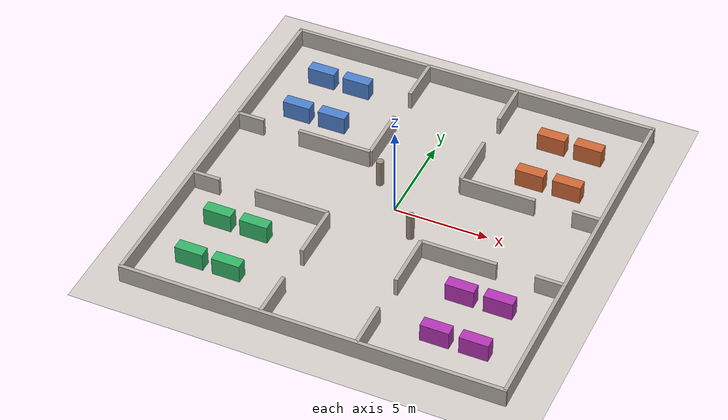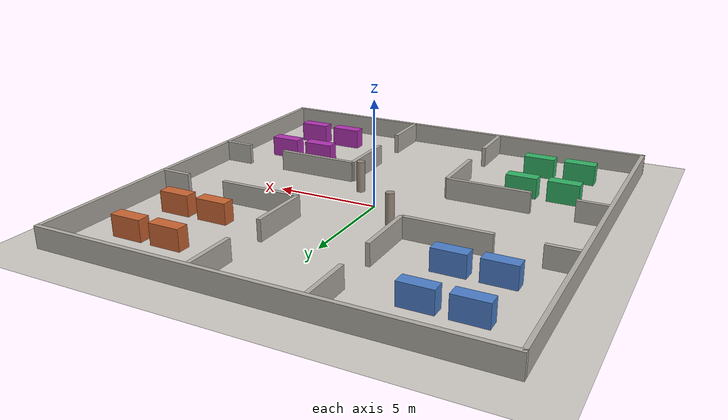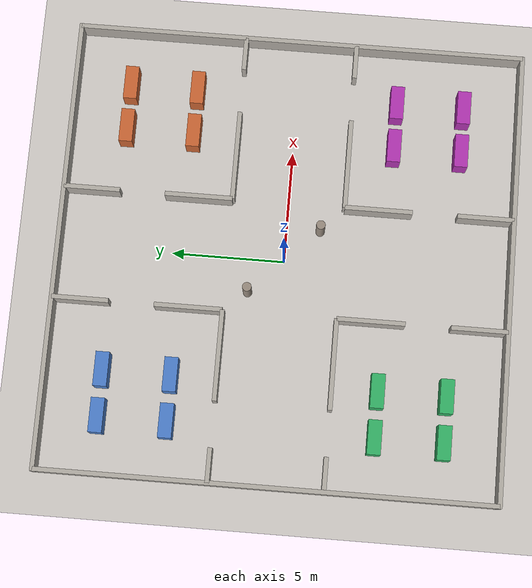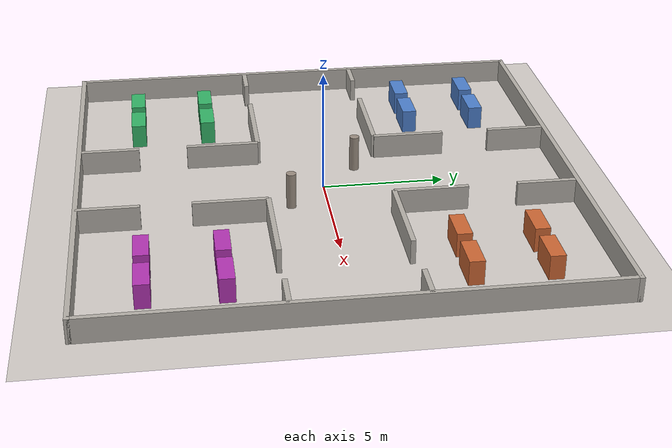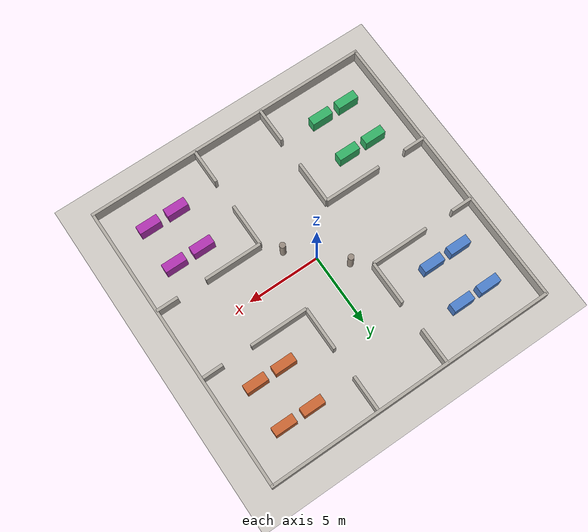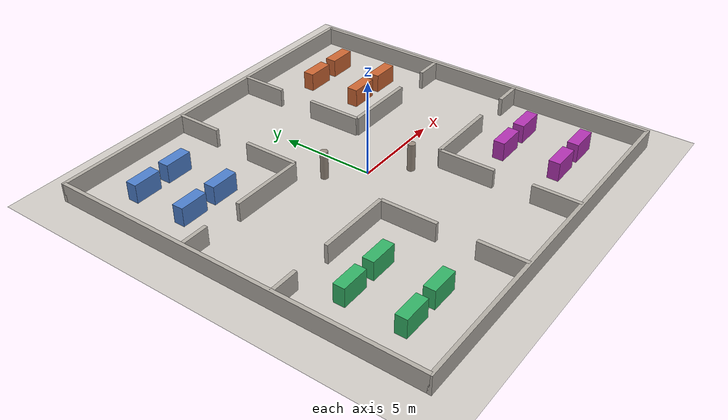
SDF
<?xml version="1.0" ?>
<sdf version="1.6">
  <world name="default">
    <physics name="1ms" type="ignored">
      <max_step_size>0.001</max_step_size>
      <real_time_factor>1.0</real_time_factor>
    </physics>
    <plugin filename="libignition-gazebo-physics-system.so"
            name="ignition::gazebo::systems::Physics"/>
    <plugin filename="libignition-gazebo-user-commands-system.so"
            name="ignition::gazebo::systems::UserCommands"/>
    <plugin filename="libignition-gazebo-scene-broadcaster-system.so"
            name="ignition::gazebo::systems::SceneBroadcaster"/>

    <light type="directional" name="sun">
      <cast_shadows>true</cast_shadows>
      <pose>0 0 10 0 0 0</pose>
      <diffuse>0.85 0.85 0.85 1</diffuse>
      <specular>0.3 0.3 0.3 1</specular>
      <attenuation>
        <range>1000</range><constant>0.9</constant>
        <linear>0.01</linear><quadratic>0.001</quadratic>
      </attenuation>
      <direction>-0.5 0.1 -0.9</direction>
    </light>

    <!-- Ground — light office carpet tone -->
    <model name="ground_plane"><static>true</static>
      <link name="link">
        <collision name="collision"><geometry><plane><normal>0 0 1</normal><size>100 100</size></plane></geometry></collision>
        <visual name="visual"><geometry><plane><normal>0 0 1</normal><size>100 100</size></plane></geometry>
          <material><ambient>0.82 0.8 0.78 1</ambient><diffuse>0.82 0.8 0.78 1</diffuse></material></visual>
      </link>
    </model>

    <!-- ════ OUTER BOUNDARY WALLS ════════════════════════════ -->
    <model name="wall_n"><static>true</static><pose>0 10 0.5 0 0 0</pose>
      <link name="link"><collision name="c"><geometry><box><size>20.2 0.2 1</size></box></geometry></collision>
        <visual name="v"><geometry><box><size>20.2 0.2 1</size></box></geometry>
          <material><ambient>0.7 0.68 0.65 1</ambient><diffuse>0.7 0.68 0.65 1</diffuse></material></visual></link>
    </model>
    <model name="wall_s"><static>true</static><pose>0 -10 0.5 0 0 0</pose>
      <link name="link"><collision name="c"><geometry><box><size>20.2 0.2 1</size></box></geometry></collision>
        <visual name="v"><geometry><box><size>20.2 0.2 1</size></box></geometry>
          <material><ambient>0.7 0.68 0.65 1</ambient><diffuse>0.7 0.68 0.65 1</diffuse></material></visual></link>
    </model>
    <model name="wall_e"><static>true</static><pose>10 0 0.5 0 0 0</pose>
      <link name="link"><collision name="c"><geometry><box><size>0.2 20 1</size></box></geometry></collision>
        <visual name="v"><geometry><box><size>0.2 20 1</size></box></geometry>
          <material><ambient>0.7 0.68 0.65 1</ambient><diffuse>0.7 0.68 0.65 1</diffuse></material></visual></link>
    </model>
    <model name="wall_w"><static>true</static><pose>-10 0 0.5 0 0 0</pose>
      <link name="link"><collision name="c"><geometry><box><size>0.2 20 1</size></box></geometry></collision>
        <visual name="v"><geometry><box><size>0.2 20 1</size></box></geometry>
          <material><ambient>0.7 0.68 0.65 1</ambient><diffuse>0.7 0.68 0.65 1</diffuse></material></visual></link>
    </model>

    <!-- Vertical left divider x=-2.5 -->
    <!-- North: y=+2.5→+10 with 2m doorway at y=+5.5→+7.5. Left of door: y=+7.5→+10 (len=2.5, cy=+8.75), right of door: y=+2.5→+5.5 (len=3, cy=+4.0) -->
    <model name="vl_nN"><static>true</static><pose>-2.5 8.75 0.5 0 0 0</pose>
      <link name="link"><collision name="c"><geometry><box><size>0.2 2.5 1</size></box></geometry></collision>
        <visual name="v"><geometry><box><size>0.2 2.5 1</size></box></geometry>
          <material><ambient>0.7 0.68 0.65 1</ambient><diffuse>0.7 0.68 0.65 1</diffuse></material></visual></link>
    </model>
    <model name="vl_nS"><static>true</static><pose>-2.5 4.0 0.5 0 0 0</pose>
      <link name="link"><collision name="c"><geometry><box><size>0.2 3.0 1</size></box></geometry></collision>
        <visual name="v"><geometry><box><size>0.2 3.0 1</size></box></geometry>
          <material><ambient>0.7 0.68 0.65 1</ambient><diffuse>0.7 0.68 0.65 1</diffuse></material></visual></link>
    </model>
    <!-- South: y=-10→-2.5 with 2m doorway at y=-7.5→-5.5 -->
    <model name="vl_sN"><static>true</static><pose>-2.5 -4.0 0.5 0 0 0</pose>
      <link name="link"><collision name="c"><geometry><box><size>0.2 3.0 1</size></box></geometry></collision>
        <visual name="v"><geometry><box><size>0.2 3.0 1</size></box></geometry>
          <material><ambient>0.7 0.68 0.65 1</ambient><diffuse>0.7 0.68 0.65 1</diffuse></material></visual></link>
    </model>
    <model name="vl_sS"><static>true</static><pose>-2.5 -8.75 0.5 0 0 0</pose>
      <link name="link"><collision name="c"><geometry><box><size>0.2 2.5 1</size></box></geometry></collision>
        <visual name="v"><geometry><box><size>0.2 2.5 1</size></box></geometry>
          <material><ambient>0.7 0.68 0.65 1</ambient><diffuse>0.7 0.68 0.65 1</diffuse></material></visual></link>
    </model>

    <!-- Vertical right divider x=+2.5  (mirrored) -->
    <model name="vr_nN"><static>true</static><pose>2.5 8.75 0.5 0 0 0</pose>
      <link name="link"><collision name="c"><geometry><box><size>0.2 2.5 1</size></box></geometry></collision>
        <visual name="v"><geometry><box><size>0.2 2.5 1</size></box></geometry>
          <material><ambient>0.7 0.68 0.65 1</ambient><diffuse>0.7 0.68 0.65 1</diffuse></material></visual></link>
    </model>
    <model name="vr_nS"><static>true</static><pose>2.5 4.0 0.5 0 0 0</pose>
      <link name="link"><collision name="c"><geometry><box><size>0.2 3.0 1</size></box></geometry></collision>
        <visual name="v"><geometry><box><size>0.2 3.0 1</size></box></geometry>
          <material><ambient>0.7 0.68 0.65 1</ambient><diffuse>0.7 0.68 0.65 1</diffuse></material></visual></link>
    </model>
    <model name="vr_sN"><static>true</static><pose>2.5 -4.0 0.5 0 0 0</pose>
      <link name="link"><collision name="c"><geometry><box><size>0.2 3.0 1</size></box></geometry></collision>
        <visual name="v"><geometry><box><size>0.2 3.0 1</size></box></geometry>
          <material><ambient>0.7 0.68 0.65 1</ambient><diffuse>0.7 0.68 0.65 1</diffuse></material></visual></link>
    </model>
    <model name="vr_sS"><static>true</static><pose>2.5 -8.75 0.5 0 0 0</pose>
      <link name="link"><collision name="c"><geometry><box><size>0.2 2.5 1</size></box></geometry></collision>
        <visual name="v"><geometry><box><size>0.2 2.5 1</size></box></geometry>
          <material><ambient>0.7 0.68 0.65 1</ambient><diffuse>0.7 0.68 0.65 1</diffuse></material></visual></link>
    </model>

    <!-- Horizontal top divider y=+2.5 with 2m doorways in A and B -->
    <!-- Left of left-divider x=-10→-2.5: doorway at x=-8.5→-6.5, sections x=-10→-8.5 (len=1.5, cx=-9.25), x=-6.5→-2.5 (len=4, cx=-4.5) -->
    <model name="ht_lL"><static>true</static><pose>-9.25 2.5 0.5 0 0 0</pose>
      <link name="link"><collision name="c"><geometry><box><size>1.5 0.2 1</size></box></geometry></collision>
        <visual name="v"><geometry><box><size>1.5 0.2 1</size></box></geometry>
          <material><ambient>0.7 0.68 0.65 1</ambient><diffuse>0.7 0.68 0.65 1</diffuse></material></visual></link>
    </model>
    <model name="ht_lR"><static>true</static><pose>-4.5 2.5 0.5 0 0 0</pose>
      <link name="link"><collision name="c"><geometry><box><size>4.0 0.2 1</size></box></geometry></collision>
        <visual name="v"><geometry><box><size>4.0 0.2 1</size></box></geometry>
          <material><ambient>0.7 0.68 0.65 1</ambient><diffuse>0.7 0.68 0.65 1</diffuse></material></visual></link>
    </model>
    <!-- Right of right-divider x=+2.5→+10: doorway at x=+6.5→+8.5 -->
    <model name="ht_rL"><static>true</static><pose>4.5 2.5 0.5 0 0 0</pose>
      <link name="link"><collision name="c"><geometry><box><size>4.0 0.2 1</size></box></geometry></collision>
        <visual name="v"><geometry><box><size>4.0 0.2 1</size></box></geometry>
          <material><ambient>0.7 0.68 0.65 1</ambient><diffuse>0.7 0.68 0.65 1</diffuse></material></visual></link>
    </model>
    <model name="ht_rR"><static>true</static><pose>9.25 2.5 0.5 0 0 0</pose>
      <link name="link"><collision name="c"><geometry><box><size>1.5 0.2 1</size></box></geometry></collision>
        <visual name="v"><geometry><box><size>1.5 0.2 1</size></box></geometry>
          <material><ambient>0.7 0.68 0.65 1</ambient><diffuse>0.7 0.68 0.65 1</diffuse></material></visual></link>
    </model>

    <!-- Horizontal bottom divider y=-2.5 (mirrored) -->
    <model name="hb_lL"><static>true</static><pose>-9.25 -2.5 0.5 0 0 0</pose>
      <link name="link"><collision name="c"><geometry><box><size>1.5 0.2 1</size></box></geometry></collision>
        <visual name="v"><geometry><box><size>1.5 0.2 1</size></box></geometry>
          <material><ambient>0.7 0.68 0.65 1</ambient><diffuse>0.7 0.68 0.65 1</diffuse></material></visual></link>
    </model>
    <model name="hb_lR"><static>true</static><pose>-4.5 -2.5 0.5 0 0 0</pose>
      <link name="link"><collision name="c"><geometry><box><size>4.0 0.2 1</size></box></geometry></collision>
        <visual name="v"><geometry><box><size>4.0 0.2 1</size></box></geometry>
          <material><ambient>0.7 0.68 0.65 1</ambient><diffuse>0.7 0.68 0.65 1</diffuse></material></visual></link>
    </model>
    <model name="hb_rL"><static>true</static><pose>4.5 -2.5 0.5 0 0 0</pose>
      <link name="link"><collision name="c"><geometry><box><size>4.0 0.2 1</size></box></geometry></collision>
        <visual name="v"><geometry><box><size>4.0 0.2 1</size></box></geometry>
          <material><ambient>0.7 0.68 0.65 1</ambient><diffuse>0.7 0.68 0.65 1</diffuse></material></visual></link>
    </model>
    <model name="hb_rR"><static>true</static><pose>9.25 -2.5 0.5 0 0 0</pose>
      <link name="link"><collision name="c"><geometry><box><size>1.5 0.2 1</size></box></geometry></collision>
        <visual name="v"><geometry><box><size>1.5 0.2 1</size></box></geometry>
          <material><ambient>0.7 0.68 0.65 1</ambient><diffuse>0.7 0.68 0.65 1</diffuse></material></visual></link>
    </model>

    <!-- ════ HALLWAY PILLARS (offset to sides, ≥1.5 m clear lane) -->
    <model name="hall_p1"><static>true</static><pose>-1.5  1.5 0.75 0 0 0</pose>
      <link name="link"><collision name="c"><geometry><cylinder><radius>0.2</radius><length>1.5</length></cylinder></geometry></collision>
        <visual name="v"><geometry><cylinder><radius>0.2</radius><length>1.5</length></cylinder></geometry>
          <material><ambient>0.6 0.55 0.5 1</ambient><diffuse>0.6 0.55 0.5 1</diffuse></material></visual></link>
    </model>
    <model name="hall_p2"><static>true</static><pose>1.5  -1.5 0.75 0 0 0</pose>
      <link name="link"><collision name="c"><geometry><cylinder><radius>0.2</radius><length>1.5</length></cylinder></geometry></collision>
        <visual name="v"><geometry><cylinder><radius>0.2</radius><length>1.5</length></cylinder></geometry>
          <material><ambient>0.6 0.55 0.5 1</ambient><diffuse>0.6 0.55 0.5 1</diffuse></material></visual></link>
    </model>

    <!-- ════ ROOM OBSTACLES (desks/cubicles per room) ════════════ -->
    <!-- Room A: top-left x=-10→-2.5, y=+2.5→+10 (safe obstacle zone: x=-8.5→-4, y=+4→+8.5) -->
    <model name="ra_obs1"><static>true</static><pose>-7.5 7.5 0.5 0 0 0</pose>
      <link name="link"><collision name="c"><geometry><box><size>1.5 0.6 1</size></box></geometry></collision>
        <visual name="v"><geometry><box><size>1.5 0.6 1</size></box></geometry>
          <material><ambient>0.3 0.5 0.8 1</ambient><diffuse>0.3 0.5 0.8 1</diffuse></material></visual></link>
    </model>
    <model name="ra_obs2"><static>true</static><pose>-5.5 7.5 0.5 0 0 0</pose>
      <link name="link"><collision name="c"><geometry><box><size>1.5 0.6 1</size></box></geometry></collision>
        <visual name="v"><geometry><box><size>1.5 0.6 1</size></box></geometry>
          <material><ambient>0.3 0.5 0.8 1</ambient><diffuse>0.3 0.5 0.8 1</diffuse></material></visual></link>
    </model>
    <model name="ra_obs3"><static>true</static><pose>-7.5 4.5 0.5 0 0 0</pose>
      <link name="link"><collision name="c"><geometry><box><size>1.5 0.6 1</size></box></geometry></collision>
        <visual name="v"><geometry><box><size>1.5 0.6 1</size></box></geometry>
          <material><ambient>0.3 0.5 0.8 1</ambient><diffuse>0.3 0.5 0.8 1</diffuse></material></visual></link>
    </model>
    <model name="ra_obs4"><static>true</static><pose>-5.5 4.5 0.5 0 0 0</pose>
      <link name="link"><collision name="c"><geometry><box><size>1.5 0.6 1</size></box></geometry></collision>
        <visual name="v"><geometry><box><size>1.5 0.6 1</size></box></geometry>
          <material><ambient>0.3 0.5 0.8 1</ambient><diffuse>0.3 0.5 0.8 1</diffuse></material></visual></link>
    </model>

    <!-- Room B: top-right x=+2.5→+10, y=+2.5→+10 -->
    <model name="rb_obs1"><static>true</static><pose>7.5 7.5 0.5 0 0 0</pose>
      <link name="link"><collision name="c"><geometry><box><size>1.5 0.6 1</size></box></geometry></collision>
        <visual name="v"><geometry><box><size>1.5 0.6 1</size></box></geometry>
          <material><ambient>0.8 0.4 0.2 1</ambient><diffuse>0.8 0.4 0.2 1</diffuse></material></visual></link>
    </model>
    <model name="rb_obs2"><static>true</static><pose>5.5 7.5 0.5 0 0 0</pose>
      <link name="link"><collision name="c"><geometry><box><size>1.5 0.6 1</size></box></geometry></collision>
        <visual name="v"><geometry><box><size>1.5 0.6 1</size></box></geometry>
          <material><ambient>0.8 0.4 0.2 1</ambient><diffuse>0.8 0.4 0.2 1</diffuse></material></visual></link>
    </model>
    <model name="rb_obs3"><!-- fixed --><static>true</static><pose>7.5 4.5 0.5 0 0 0</pose>
      <link name="link"><collision name="c"><geometry><box><size>1.5 0.6 1</size></box></geometry></collision>
        <visual name="v"><geometry><box><size>1.5 0.6 1</size></box></geometry>
          <material><ambient>0.8 0.4 0.2 1</ambient><diffuse>0.8 0.4 0.2 1</diffuse></material></visual></link>
    </model>
    <model name="rb_obs4"><static>true</static><pose>5.5 4.5 0.5 0 0 0</pose>
      <link name="link"><collision name="c"><geometry><box><size>1.5 0.6 1</size></box></geometry></collision>
        <visual name="v"><geometry><box><size>1.5 0.6 1</size></box></geometry>
          <material><ambient>0.8 0.4 0.2 1</ambient><diffuse>0.8 0.4 0.2 1</diffuse></material></visual></link>
    </model>

    <!-- Room C: bottom-left x=-10→-2.5, y=-10→-2.5 -->
    <model name="rc_obs1"><static>true</static><pose>-7.5 -7.5 0.5 0 0 0</pose>
      <link name="link"><collision name="c"><geometry><box><size>1.5 0.6 1</size></box></geometry></collision>
        <visual name="v"><geometry><box><size>1.5 0.6 1</size></box></geometry>
          <material><ambient>0.2 0.7 0.4 1</ambient><diffuse>0.2 0.7 0.4 1</diffuse></material></visual></link>
    </model>
    <model name="rc_obs2"><static>true</static><pose>-5.5 -7.5 0.5 0 0 0</pose>
      <link name="link"><collision name="c"><geometry><box><size>1.5 0.6 1</size></box></geometry></collision>
        <visual name="v"><geometry><box><size>1.5 0.6 1</size></box></geometry>
          <material><ambient>0.2 0.7 0.4 1</ambient><diffuse>0.2 0.7 0.4 1</diffuse></material></visual></link>
    </model>
    <model name="rc_obs3"><static>true</static><pose>-7.5 -4.5 0.5 0 0 0</pose>
      <link name="link"><collision name="c"><geometry><box><size>1.5 0.6 1</size></box></geometry></collision>
        <visual name="v"><geometry><box><size>1.5 0.6 1</size></box></geometry>
          <material><ambient>0.2 0.7 0.4 1</ambient><diffuse>0.2 0.7 0.4 1</diffuse></material></visual></link>
    </model>
    <model name="rc_obs4"><static>true</static><pose>-5.5 -4.5 0.5 0 0 0</pose>
      <link name="link"><collision name="c"><geometry><box><size>1.5 0.6 1</size></box></geometry></collision>
        <visual name="v"><geometry><box><size>1.5 0.6 1</size></box></geometry>
          <material><ambient>0.2 0.7 0.4 1</ambient><diffuse>0.2 0.7 0.4 1</diffuse></material></visual></link>
    </model>

    <!-- Room D: bottom-right x=+2.5→+10, y=-10→-2.5 -->
    <model name="rd_obs1"><static>true</static><pose>7.5 -7.5 0.5 0 0 0</pose>
      <link name="link"><collision name="c"><geometry><box><size>1.5 0.6 1</size></box></geometry></collision>
        <visual name="v"><geometry><box><size>1.5 0.6 1</size></box></geometry>
          <material><ambient>0.7 0.2 0.7 1</ambient><diffuse>0.7 0.2 0.7 1</diffuse></material></visual></link>
    </model>
    <model name="rd_obs2"><static>true</static><pose>5.5 -7.5 0.5 0 0 0</pose>
      <link name="link"><collision name="c"><geometry><box><size>1.5 0.6 1</size></box></geometry></collision>
        <visual name="v"><geometry><box><size>1.5 0.6 1</size></box></geometry>
          <material><ambient>0.7 0.2 0.7 1</ambient><diffuse>0.7 0.2 0.7 1</diffuse></material></visual></link>
    </model>
    <model name="rd_obs3"><static>true</static><pose>7.5 -4.5 0.5 0 0 0</pose>
      <link name="link"><collision name="c"><geometry><box><size>1.5 0.6 1</size></box></geometry></collision>
        <visual name="v"><geometry><box><size>1.5 0.6 1</size></box></geometry>
          <material><ambient>0.7 0.2 0.7 1</ambient><diffuse>0.7 0.2 0.7 1</diffuse></material></visual></link>
    </model>
    <model name="rd_obs4"><static>true</static><pose>5.5 -4.5 0.5 0 0 0</pose>
      <link name="link"><collision name="c"><geometry><box><size>1.5 0.6 1</size></box></geometry></collision>
        <visual name="v"><geometry><box><size>1.5 0.6 1</size></box></geometry>
          <material><ambient>0.7 0.2 0.7 1</ambient><diffuse>0.7 0.2 0.7 1</diffuse></material></visual></link>
    </model>

  </world>
</sdf>
